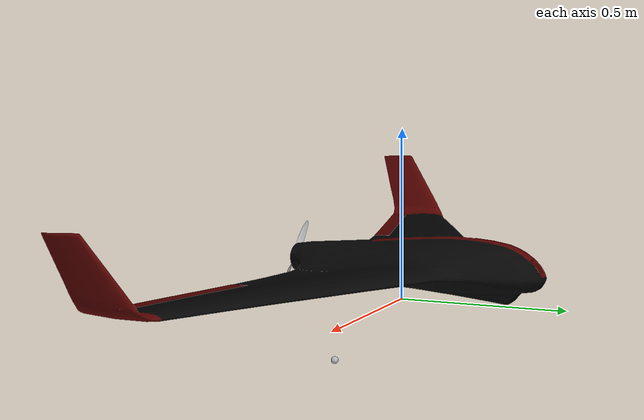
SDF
<?xml version="1.0"?>
<sdf version='1.5'>
  <model name='skywalker_talon'>
    <include>
      <uri>model://skywalker</uri>
    </include>
   <link name="camera_link">
      <inertial>
       <mass>0.1</mass>
        <inertia>
        <pose>0.48 0 -0.08 0 -0 0</pose>
          <ixx>0.001</ixx>
          <ixy>0</ixy>
          <ixz>0</ixz>
          <iyy>0.001</iyy>
          <iyz>0</iyz>
          <izz>0.001</izz>
        </inertia>
      </inertial>
      <pose>0.48 0 -0.08 0 -0 0</pose>
      <sensor name="camera_imu" type="imu">
        <always_on>1</always_on>
      </sensor>
      <sensor name="camera" type="camera">
        <camera>
          <horizontal_fov>1.0</horizontal_fov>
          <image>
            <format>R8G8B8</format>
            <width>640</width>
            <height>360</height>
          </image>
          <clip>
            <near>0.05</near>
            <far>15000</far>
          </clip>
        </camera>
        <always_on>1</always_on>
        <update_rate>5</update_rate>
        <visualize>true</visualize>
        <plugin name="GstCameraPlugin" filename="libgazebo_gst_camera_plugin.so">
            <robotNamespace></robotNamespace>
            <udpPort>5600</udpPort>
        </plugin>
        <plugin name="GeotaggedImagesPlugin" filename="libgazebo_geotagged_images_plugin.so">
          <robotNamespace></robotNamespace>
          <interval>1</interval>
          <width>3840</width>
          <height>2160</height>
        </plugin>
      </sensor>
          <visual name="camera_link_visual">
      <geometry>
        <sphere>
          <radius>0.01</radius>
        </sphere>
      </geometry>
    </visual>
    </link>
        <joint name="cam_joint" type="fixed">
      <parent>skywalker::base_link</parent>
      <child>camera_link</child>
    </joint>
  </model>
</sdf>

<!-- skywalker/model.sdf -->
<sdf version='1.6'>
  <model name='skywalker'>
    <!-- Note: Unlike standard aero NED systems, this makes use of the ROS ENU standard with mapping taking place externally -->
    <pose>0 0 0 0 0 0</pose>
    <static>false</static>
    <link name='x8_body'>
      <pose>0 0 0.11 0 0 0</pose>
      <inertial>
        <pose>0 0 0 0 0 0</pose> <!-- Body origin defined at CG -->
        <mass>3.364</mass>
        <inertia> <!-- Note that X and Y are swapped from NED coordinate version -->
          <ixx>0.1702</ixx>
          <ixy>0</ixy>
          <ixz>0</ixz>
          <iyy>1.229</iyy>
          <iyz>0.9343</iyz>
          <izz>0.8808</izz>
        </inertia>
      </inertial>
      <collision name='x8_body_collision'>
        <pose>0 0 0.045 0 0 1.5708</pose>
        <geometry>
          <box>
            <size>0.931 2.151 0.31</size>
          </box>
        </geometry>
        <surface>
          <contact>
            <ode>
              <max_vel>10</max_vel>
              <min_depth>0.01</min_depth>
            </ode>
          </contact>
        </surface>
      </collision>
      <visual name='x8_body_visual'>
        <pose>0 0 0 0 0 0</pose>
        <geometry>
          <mesh>
            <scale>1 1 1</scale>
            <uri>model://skywalker/meshes/x8_body.dae</uri>
          </mesh>
        </geometry>
      </visual>
    </link>

    <link name='x8_propeller'>
      <pose>0 -0.34687 0.11 0 0 0</pose>
      <inertial>
        <pose>0 0 0 0 0 0</pose>
        <mass>0.005</mass>
        <inertia>
          <ixx>9.75e-07</ixx>
          <ixy>0</ixy>
          <ixz>0</ixz>
          <iyy>0.000166704</iyy>
          <iyz>0</iyz>
          <izz>0.000167604</izz>
        </inertia>
      </inertial>
      <collision name='x8_propeller_collision'>
        <pose>0 0 0 1.5707963 0 0</pose>
        <geometry>
          <cylinder>
            <length>0.01031</length>
            <radius>0.13</radius>
          </cylinder>
        </geometry>
        <surface>
          <contact>
            <ode/>
          </contact>
          <friction>
            <ode/>
          </friction>
        </surface>
      </collision>
      <visual name='x8_propeller_visual'>
        <pose>0 0 0 0 0 0</pose>
        <geometry>
          <mesh>
            <scale>1 1 1</scale>
            <uri>model://skywalker/meshes/x8_propeller.dae</uri>
          </mesh>
        </geometry>
      </visual>
      <gravity>1</gravity>
      <velocity_decay/>
      <self_collide>0</self_collide>
    </link>
    <joint name='x8_propeller_joint' type='revolute'>
      <parent>x8_body</parent>
      <child>x8_propeller</child>
      <pose>0 0 0 0 0 0</pose>
      <axis>
        <xyz>0 1 0</xyz>
        <dynamics>
          <damping>1</damping>
        </dynamics>
        <use_parent_model_frame>true</use_parent_model_frame>
      </axis>
      <physics>
        <ode>
          <implicit_spring_damper>true</implicit_spring_damper>
        </ode>
      </physics>
    </joint>

    <link name="left_elevon">
      <pose>-0.75116 -0.35502 0.10633 0 0 0</pose>
      <inertial>
        <pose>0 0 0 0 0 0</pose>
        <mass>0.001</mass>
        <inertia>
          <ixx>0.00001</ixx>
          <ixy>0.0</ixy>
          <iyy>0.00001</iyy>
          <ixz>0.0</ixz>
          <iyz>0.0</iyz>
          <izz>0.00001</izz>
        </inertia>
      </inertial>
      <visual name='left_elevon_visual'>
        <pose>0 0 0 0 0 0</pose>
        <geometry>
          <mesh>
            <scale>1 1 1</scale>
            <uri>model://skywalker/meshes/x8_elevon_left.dae</uri>
          </mesh>
        </geometry>
      </visual>
    </link>
    <joint name='left_elevon_joint' type='revolute'>
      <parent>x8_body</parent>
      <child>left_elevon</child>
      <pose>0 0.042273 0 0 0 0.26529</pose>
      <axis>
        <xyz>1 0 0</xyz>
        <limit>
          <!-- -15/+15 deg. -->
          <lower>-0.2618</lower>
          <upper>0.2618</upper>
        </limit>
        <dynamics>
          <damping>1.000</damping>
        </dynamics>
      </axis>
      <physics>
        <ode>
          <implicit_spring_damper>true</implicit_spring_damper>
        </ode>
      </physics>
    </joint>

    <link name="right_elevon">
      <pose>0.75116 -0.35502 0.10633 0 0 0</pose>
      <inertial>
        <pose>0 0 0 0 0 0</pose>
        <mass>0.001</mass>
        <inertia>
          <ixx>0.00001</ixx>
          <ixy>0.0</ixy>
          <iyy>0.00001</iyy>
          <ixz>0.0</ixz>
          <iyz>0.0</iyz>
          <izz>0.00001</izz>
        </inertia>
      </inertial>
      <visual name='right_elevon_visual'>
        <pose>0 0 0 0 0 0</pose>
        <geometry>
          <mesh>
            <scale>1 1 1</scale>
            <uri>model://skywalker/meshes/x8_elevon_right.dae</uri>
          </mesh>
        </geometry>
      </visual>
    </link>
    <joint name='right_elevon_joint' type='revolute'>
      <parent>x8_body</parent>
      <child>right_elevon</child>
      <pose>0 0.042273 0 0 0 -0.26529</pose>
      <axis>
        <xyz>1 0 0</xyz>
        <limit>
          <!-- -15/+15 deg. -->
          <lower>-0.2618</lower>
          <upper>0.2618</upper>
        </limit>
        <dynamics>
          <damping>1.000</damping>
        </dynamics>
      </axis>
      <physics>
        <ode>
          <implicit_spring_damper>true</implicit_spring_damper>
        </ode>
      </physics>
    </joint>

    <plugin name='vehicle_Aerodynamics' filename='libvehicle_aerodynamics.so'>
	<link_name>x8_body</link_name>
	<vehicle_config>FlyingWing</vehicle_config>
	<controlJoint_portElevon>left_elevon_joint</controlJoint_portElevon>
	<controlJoint_starboardElevon>right_elevon_joint</controlJoint_starboardElevon>
	<CL0>0.0867</CL0>
	<CLalpha>4.02</CLalpha>
	<CLq>3.8954</CLq>
	<CLde>0.278</CLde>
	<CD0>0.0197</CD0>
	<CDalpha>0.0791</CDalpha>
	<CDalpha2>1.06</CDalpha2>
	<CDq>0.0</CDq>
	<CDbeta2>0.148</CDbeta2>
	<CDbeta>-0.00584</CDbeta>
	<CDde>0.0633</CDde>
	<CY0>0.0</CY0>
	<CYbeta>-0.224</CYbeta>
	<CYp>-0.1172</CYp>
	<CYr>0.0959</CYr>
	<CYda>0.0433</CYda>
	<Cl0>0.0</Cl0>
	<Clbeta>-0.0849</Clbeta>
	<Clp>-0.4018</Clp>
	<Clr>0.025</Clr>
	<Clda>0.12</Clda>
	<Cldr>0.0</Cldr>
	<Cm0>0.0302</Cm0>
	<Cmalpha>-0.126</Cmalpha>
	<Cmq>-1.3047</Cmq>
	<Cmde>-0.206</Cmde>
	<Cn0>0.0</Cn0>
	<Cnbeta>0.0283</Cnbeta>
	<Cnp>-0.0247</Cnp>
	<Cnr>-0.1252</Cnr>
	<Cnda>-0.00339</Cnda>
	<Cndr>0.0</Cndr>
	<b>2.1</b>
	<c>0.3571</c>
	<S>0.75</S>
	<alpha_0>0.267</alpha_0>
	<M_trans>50.0</M_trans>
	<C_mfp>-0.2168</C_mfp>
    </plugin>
    <plugin name='propeller_aerodynamics' filename='libpropeller_aerodynamics.so'>
	<link_name>x8_body</link_name>
	<propeller_joint>x8_propeller_joint</propeller_joint>
	<Sprop>0.1018</Sprop>
	<Cprop>0.5</Cprop>
	<kmotor>40</kmotor>
	<kT_p>0.0</kT_p>
	<komega>0.0</komega>
	<rotor_velocity_slowdown_sim>5</rotor_velocity_slowdown_sim>
	<rotation_direction>1</rotation_direction>
    </plugin>
  </model>
</sdf>
